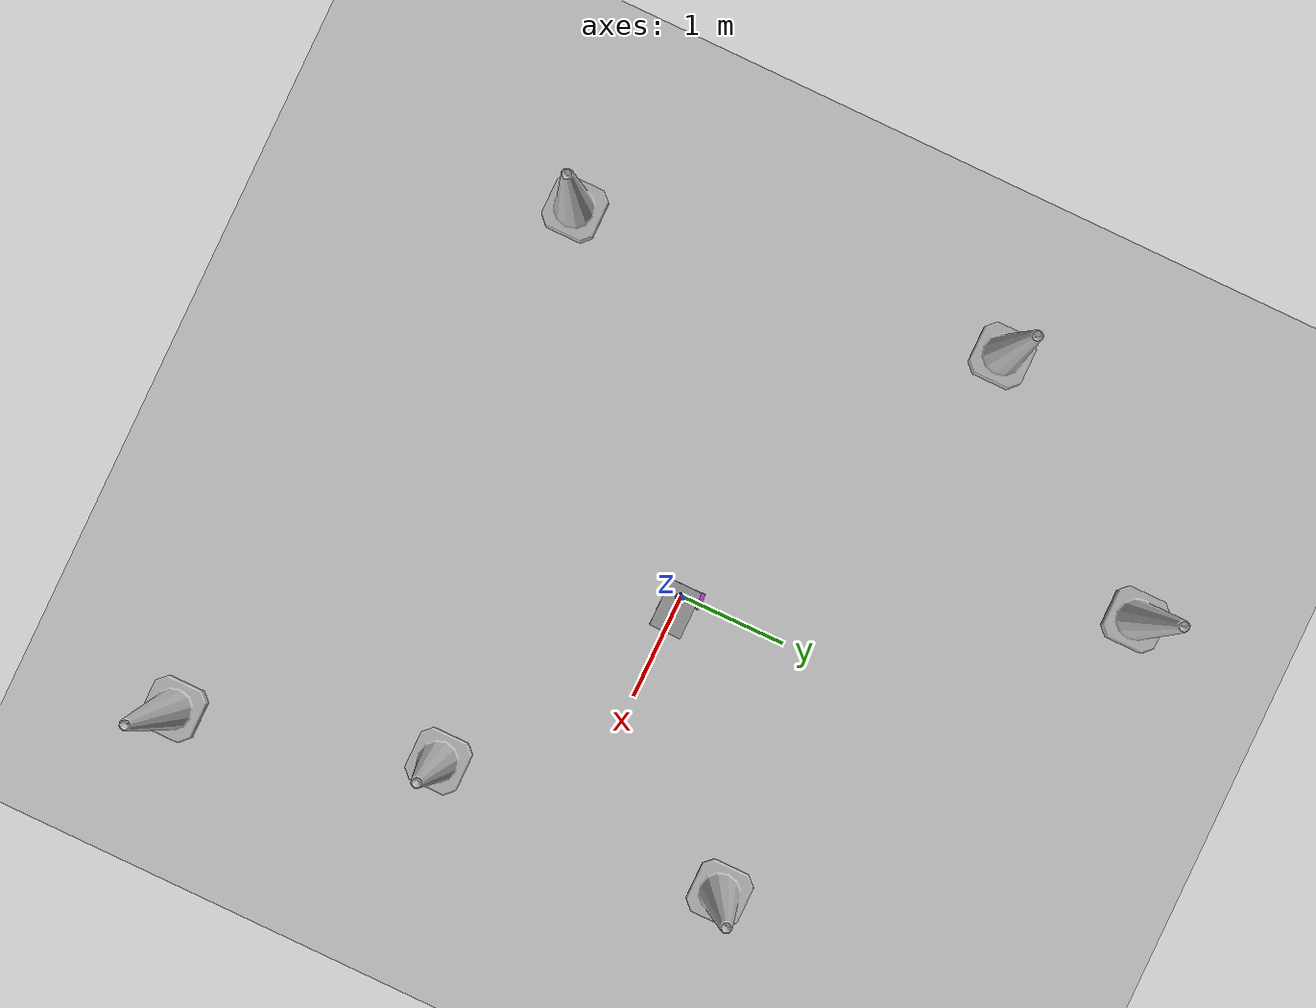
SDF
<sdf version="1.7">
 <world name="default">
  <light name="sun" type="directional">
   <pose>0 0 10 0 -0 0</pose>
   <diffuse>0.8 0.8 0.8 1</diffuse>
   <specular>0.2 0.2 0.2 1</specular>
   <attenuation>
    <range>1000</range>
    <constant>0.9</constant>
    <linear>0.01</linear>
    <quadratic>0.001</quadratic>
   </attenuation>
   <direction>-0.5 0.1 -0.9</direction>
   <spot><inner_angle>0</inner_angle><outer_angle>0</outer_angle><falloff>0</falloff></spot>
  </light>
  <model name="ground_plane">
   <static>1</static>
   <link name="link">
    <collision name="collision">
     <geometry><plane><normal>0 0 1</normal><size>100 100</size></plane></geometry>
     <surface>
      <contact><collide_bitmask>65535</collide_bitmask></contact>
      <friction><ode><mu>100</mu><mu2>50</mu2></ode></friction>
     </surface>
    </collision>
    <visual name="visual">
     <cast_shadows>0</cast_shadows>
     <geometry><plane><normal>0 0 1</normal><size>100 100</size></plane></geometry>
     <material>
      <script><uri>file://media/materials/scripts/gazebo.material</uri><name>Gazebo/Grey</name></script>
     </material>
    </visual>
   </link>
  </model>
  <gravity>0 0 -9.8</gravity>
  <magnetic_field>6e-06 2.3e-05 -4.2e-05</magnetic_field>
  <atmosphere type="adiabatic"/>
  <physics type="ode">
   <max_step_size>0.001</max_step_size>
   <real_time_factor>1</real_time_factor>
   <real_time_update_rate>1000</real_time_update_rate>
  </physics>
  <scene><ambient>0.4 0.4 0.4 1</ambient><background>0.7 0.7 0.7 1</background><shadows>1</shadows></scene>
  <audio><device>default</device></audio>
  <spherical_coordinates>
   <surface_model>EARTH_WGS84</surface_model>
   <latitude_deg>0</latitude_deg>
   <longitude_deg>0</longitude_deg>
   <elevation>0</elevation>
   <heading_deg>0</heading_deg>
  </spherical_coordinates>
  <model name="my_bot">
   <link name="base_link">
    <inertial>
     <pose>0.196025 0 0.024659 0 -0 0</pose>
     <mass>0.8</mass>
     <inertia>
      <ixx>0.0056935</ixx>
      <ixy>0</ixy>
      <ixz>0.00394807</ixz>
      <iyy>0.0206701</iyy>
      <iyz>0</iyz>
      <izz>0.0226846</izz>
     </inertia>
    </inertial>
    <collision name="base_link_fixed_joint_lump__chassis_collision">
     <pose>0.15012 0 0.039565 0 -0 0</pose>
     <geometry><box><size>0.448 0.3 0.07913</size></box></geometry>
    </collision>
    <collision name="base_link_fixed_joint_lump__caster_wheel_collision_1">
     <pose>0.38474 0 -0.045275 0 -0 0</pose>
     <geometry><sphere><radius>0.032225</radius></sphere></geometry>
     <surface><friction><ode><mu>0.001</mu><mu2>0.001</mu2></ode></friction></surface>
    </collision>
    <collision name="base_link_fixed_joint_lump__laser_frame_collision_2">
     <pose>0.04812 0 0.09 0 -0 0</pose>
     <geometry><cylinder><length>0.05</length><radius>0.05</radius></cylinder></geometry>
    </collision>
    <visual name="base_link_fixed_joint_lump__chassis_visual">
     <pose>0.15012 0 0.039565 0 -0 0</pose>
     <geometry><box><size>0.448 0.3 0.07913</size></box></geometry>
     <material>
      <script><name>Gazebo/Grey</name><uri>file://media/materials/scripts/gazebo.material</uri></script>
     </material>
    </visual>
    <visual name="base_link_fixed_joint_lump__caster_wheel_visual_1">
     <pose>0.38474 0 -0.045275 0 -0 0</pose>
     <geometry><sphere><radius>0.032225</radius></sphere></geometry>
     <material>
      <script><name>Gazebo/Blue</name><uri>file://media/materials/scripts/gazebo.material</uri></script>
     </material>
    </visual>
    <visual name="base_link_fixed_joint_lump__laser_frame_visual_2">
     <pose>0.04812 0 0.09 0 -0 0</pose>
     <geometry><cylinder><length>0.05</length><radius>0.05</radius></cylinder></geometry>
     <material>
      <script><name>Gazebo/Black</name><uri>file://media/materials/scripts/gazebo.material</uri></script>
     </material>
    </visual>
    <sensor name="laser" type="ray">
     <visualize>1</visualize>
     <update_rate>10</update_rate>
     <ray>
      <scan>
       <horizontal>
        <samples>360</samples>
        <min_angle>-3.14</min_angle>
        <max_angle>3.14</max_angle>
        <resolution>1</resolution>
       </horizontal>
       <vertical><samples>1</samples><min_angle>0</min_angle><max_angle>0</max_angle></vertical>
      </scan>
      <range><min>0.3</min><max>12</max></range>
     </ray>
     <plugin name="laser_controller" filename="libgazebo_ros_ray_sensor.so">
      <ros><argument>~/out:=scan</argument></ros>
      <output_type>sensor_msgs/LaserScan</output_type>
      <frame_name>laser_frame</frame_name>
     </plugin>
     <pose>0.04812 0 0.09 0 -0 0</pose>
    </sensor>
   </link>
   <joint name="left_wheel_joint" type="revolute">
    <pose relative_to="base_link">0 0.169 0 -1.5708 0 0</pose>
    <parent>base_link</parent>
    <child>left_wheel</child>
    <axis>
     <xyz>0 0 1</xyz>
     <limit><lower>-1e+16</lower><upper>1e+16</upper></limit>
     <dynamics><spring_reference>0</spring_reference><spring_stiffness>0</spring_stiffness></dynamics>
    </axis>
   </joint>
   <link name="left_wheel">
    <pose relative_to="left_wheel_joint">0 0 0 0 -0 0</pose>
    <inertial>
     <mass>0.5</mass>
     <inertia>
      <ixx>0.000813702</ixx>
      <ixy>0</ixy>
      <ixz>0</ixz>
      <iyy>0.000813702</iyy>
      <iyz>0</iyz>
      <izz>0.00150156</izz>
     </inertia>
    </inertial>
    <collision name="left_wheel_collision">
     <geometry><sphere><radius>0.0775</radius></sphere></geometry>
    </collision>
    <visual name="left_wheel_visual">
     <geometry><cylinder><length>0.03886</length><radius>0.0775</radius></cylinder></geometry>
     <material>
      <script><name>Gazebo/Purple</name><uri>file://media/materials/scripts/gazebo.material</uri></script>
     </material>
    </visual>
   </link>
   <joint name="right_wheel_joint" type="revolute">
    <pose relative_to="base_link">0 -0.169 0 1.5708 -0 0</pose>
    <parent>base_link</parent>
    <child>right_wheel</child>
    <axis>
     <xyz>0 0 -1</xyz>
     <limit><lower>-1e+16</lower><upper>1e+16</upper></limit>
     <dynamics><spring_reference>0</spring_reference><spring_stiffness>0</spring_stiffness></dynamics>
    </axis>
   </joint>
   <link name="right_wheel">
    <pose relative_to="right_wheel_joint">0 0 0 0 -0 0</pose>
    <inertial>
     <mass>0.5</mass>
     <inertia>
      <ixx>0.000813702</ixx>
      <ixy>0</ixy>
      <ixz>0</ixz>
      <iyy>0.000813702</iyy>
      <iyz>0</iyz>
      <izz>0.00150156</izz>
     </inertia>
    </inertial>
    <collision name="right_wheel_collision">
     <geometry><sphere><radius>0.0775</radius></sphere></geometry>
    </collision>
    <visual name="right_wheel_visual">
     <geometry><cylinder><length>0.03886</length><radius>0.0775</radius></cylinder></geometry>
     <material>
      <script><name>Gazebo/Green</name><uri>file://media/materials/scripts/gazebo.material</uri></script>
     </material>
    </visual>
   </link>
   <static>0</static>
   <plugin name="gazebo_ros2_control" filename="libgazebo_ros2_control.so">
    <parameters>/home/alex/mower_ws/install/mower_bot/share/mower_bot/config/my_controllers.yaml</parameters>
    <parameters>/home/alex/mower_ws/install/mower_bot/share/mower_bot/config/gaz_ros2_ctl_use_sim.yaml</parameters>
   </plugin>
   <pose>-0.028034 -0.00018 0.077496 -2.4e-05 -1e-05 -0.00061</pose>
  </model>
  <model name="Construction Cone">
   <link name="link">
    <collision name="collision">
     <geometry>
      <mesh><scale>10 10 10</scale><uri>model://construction_cone/meshes/construction_cone.dae</uri></mesh>
     </geometry>
    </collision>
    <visual name="visual">
     <geometry>
      <mesh><scale>10 10 10</scale><uri>model://construction_cone/meshes/construction_cone.dae</uri></mesh>
     </geometry>
    </visual>
    <inertial>
     <inertia><ixx>1</ixx><ixy>0</ixy><ixz>0</ixz><iyy>1</iyy><iyz>0</iyz><izz>1</izz></inertia>
     <mass>1</mass>
    </inertial>
   </link>
   <pose>2.84864 -3.66805 -0 0 -0 0</pose>
  </model>
  <model name="Construction Cone_0">
   <link name="link">
    <collision name="collision">
     <geometry>
      <mesh><scale>10 10 10</scale><uri>model://construction_cone/meshes/construction_cone.dae</uri></mesh>
     </geometry>
    </collision>
    <visual name="visual">
     <geometry>
      <mesh><scale>10 10 10</scale><uri>model://construction_cone/meshes/construction_cone.dae</uri></mesh>
     </geometry>
    </visual>
    <inertial>
     <inertia><ixx>1</ixx><ixy>0</ixy><ixz>0</ixz><iyy>1</iyy><iyz>0</iyz><izz>1</izz></inertia>
     <mass>1</mass>
    </inertial>
   </link>
   <pose>2.25142 1.44365 -0 0 -0 0</pose>
  </model>
  <model name="Construction Cone_1">
   <link name="link">
    <collision name="collision">
     <geometry>
      <mesh><scale>10 10 10</scale><uri>model://construction_cone/meshes/construction_cone.dae</uri></mesh>
     </geometry>
    </collision>
    <visual name="visual">
     <geometry>
      <mesh><scale>10 10 10</scale><uri>model://construction_cone/meshes/construction_cone.dae</uri></mesh>
     </geometry>
    </visual>
    <inertial>
     <inertia><ixx>1</ixx><ixy>0</ixy><ixz>0</ixz><iyy>1</iyy><iyz>0</iyz><izz>1</izz></inertia>
     <mass>1</mass>
    </inertial>
   </link>
   <pose>-2.71962 -2.33585 -0 0 -1e-06 0</pose>
  </model>
  <model name="Construction Cone_2">
   <link name="link">
    <collision name="collision">
     <geometry>
      <mesh><scale>10 10 10</scale><uri>model://construction_cone/meshes/construction_cone.dae</uri></mesh>
     </geometry>
    </collision>
    <visual name="visual">
     <geometry>
      <mesh><scale>10 10 10</scale><uri>model://construction_cone/meshes/construction_cone.dae</uri></mesh>
     </geometry>
    </visual>
    <inertial>
     <inertia><ixx>1</ixx><ixy>0</ixy><ixz>0</ixz><iyy>1</iyy><iyz>0</iyz><izz>1</izz></inertia>
     <mass>1</mass>
    </inertial>
   </link>
   <pose>-3.16445 1.67557 -5e-06 -4e-06 1e-06 0</pose>
  </model>
  <model name="Construction Cone_3">
   <link name="link">
    <collision name="collision">
     <geometry>
      <mesh><scale>10 10 10</scale><uri>model://construction_cone/meshes/construction_cone.dae</uri></mesh>
     </geometry>
    </collision>
    <visual name="visual">
     <geometry>
      <mesh><scale>10 10 10</scale><uri>model://construction_cone/meshes/construction_cone.dae</uri></mesh>
     </geometry>
    </visual>
    <inertial>
     <inertia><ixx>1</ixx><ixy>0</ixy><ixz>0</ixz><iyy>1</iyy><iyz>0</iyz><izz>1</izz></inertia>
     <mass>1</mass>
    </inertial>
   </link>
   <pose>-1.54147 3.75705 -0 0 -0 0</pose>
  </model>
  <model name="Construction Cone_4">
   <link name="link">
    <collision name="collision">
     <geometry>
      <mesh><scale>10 10 10</scale><uri>model://construction_cone/meshes/construction_cone.dae</uri></mesh>
     </geometry>
    </collision>
    <visual name="visual">
     <geometry>
      <mesh><scale>10 10 10</scale><uri>model://construction_cone/meshes/construction_cone.dae</uri></mesh>
     </geometry>
    </visual>
    <inertial>
     <inertia><ixx>1</ixx><ixy>0</ixy><ixz>0</ixz><iyy>1</iyy><iyz>0</iyz><izz>1</izz></inertia>
     <mass>1</mass>
    </inertial>
   </link>
   <pose>2.25943 -1.32872 -0 0 -1e-06 0</pose>
  </model>
 </world>
</sdf>
